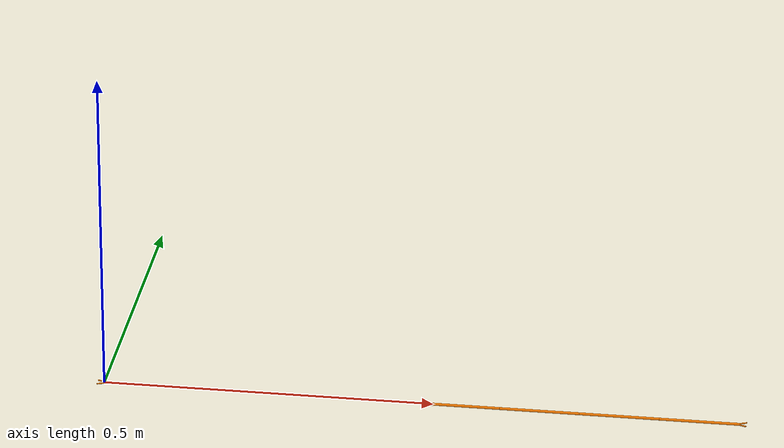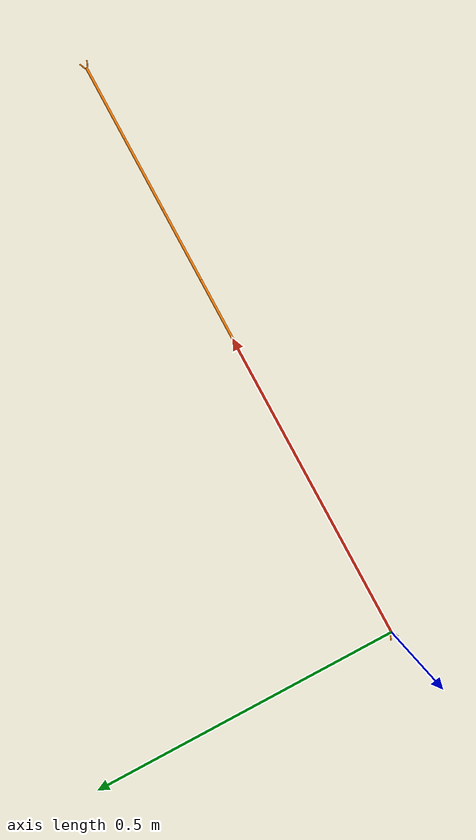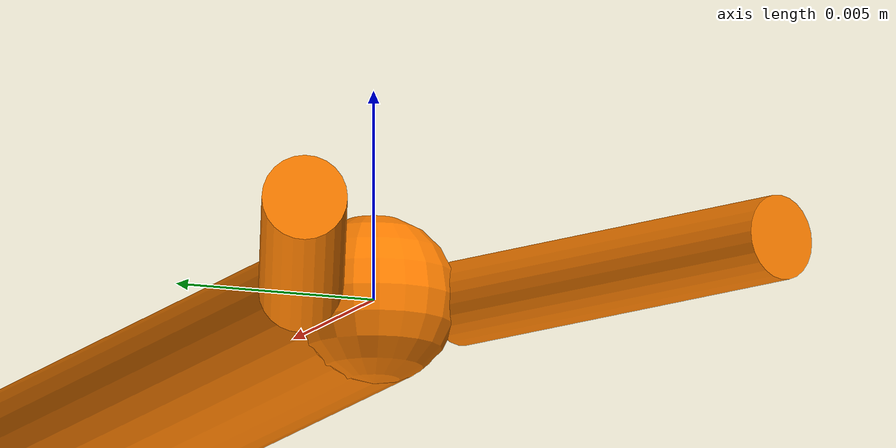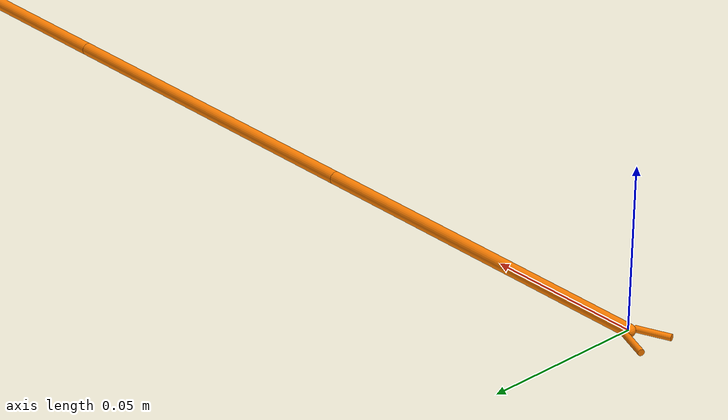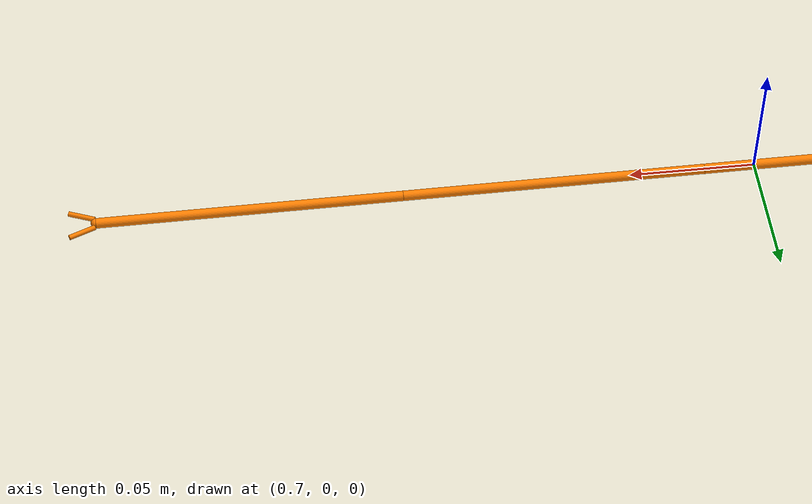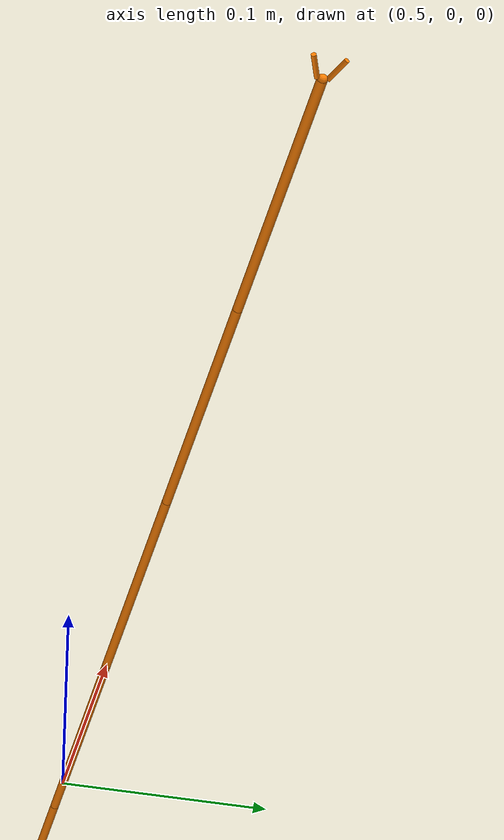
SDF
<?xml version="1.0" ?>
<!--
  THIS FILE IS AUTO-GENERATED FROM AN ERB TEMPLATE

  see instructions in 'path_to_ws/src/aic/aic_assets/scripts/cable.sdf.erb'
-->
<sdf version="1.9">
  <model name="cable">
    <link name="cable_end_0">
      <pose>0.000000 0.000000 0.000000 0.000000 -0.000000 0.000000</pose>
      <inertial>
        <pose>0.000000 0.000000 0.000000 0.000000 -0.000000 0.000000</pose>
        <mass>0.0375</mass>
        <inertia>
          <ixx>0.010000</ixx>
          <ixy>0.000000</ixy>
          <ixz>0.000000</ixz>
          <iyy>0.010000</iyy>
          <iyz>0.000000</iyz>
          <izz>0.010000</izz>
        </inertia>
      </inertial>
      <collision name="base_collision">
        <pose>0.000000 0.000000 0.000000 0.000000 0.000000 0.000000</pose>
        <geometry>
          <sphere>
            <radius>0.002</radius>
          </sphere>
        </geometry>
      </collision>
      <visual name="base_vis">
        <pose>0.000000 0.000000 0.000000 0.000000 0.000000 0.000000</pose>
        <geometry>
          <sphere>
            <radius>0.002</radius>
          </sphere>
        </geometry>
        <material>
          <diffuse>1.0 0.5 0.0</diffuse>
          <specular>0.2 0.2 0.2</specular>
          <pbr>
            <metal>
              <roughness>0.05</roughness>
              <metalness>0.01</metalness>
            </metal>
          </pbr>
        </material>
      </visual>
    </link>
    <joint name="joint_end_0" type="ball">
      <pose>0.00000 0.000000 -0.06 0.000000 0 0.000000</pose>
      <child>link_1</child>
      <parent>cable_end_0</parent>
      <axis>
        <dynamics>
          <damping>1.0</damping>
          <spring_stiffness>1.0</spring_stiffness>
        </dynamics>
      </axis>
    </joint>
    <link name="link_1">
      <pose>0.06 0.000000 0.000000 0.000000 1.570790 0.000000</pose>
      <inertial>
        <pose>0.000000 0.000000 0.000000 0.000000 -0.000000 0.000000</pose>
        <mass>0.0375</mass>
        <inertia>
          <ixx>0.010000</ixx>
          <ixy>0.000000</ixy>
          <ixz>0.000000</ixz>
          <iyy>0.010000</iyy>
          <iyz>0.000000</iyz>
          <izz>0.010000</izz>
        </inertia>
      </inertial>
      <collision name="link_1_collision">
        <pose>0.00000 0.000000 0.000000 0.000000 0 0.000000</pose>
        <geometry>
          <cylinder>
            <length>0.12</length>
            <radius>0.002</radius>
          </cylinder>
        </geometry>
      </collision>
      <visual name="link_1_vis">
        <pose>0.00000 0.000000 0.000000 0.000000 0 0.000000</pose>
        <geometry>
          <cylinder>
            <length>0.12</length>
            <radius>0.002</radius>
          </cylinder>
        </geometry>
        <material>
          <diffuse>1.0 0.5 0.0</diffuse>
          <specular>0.2 0.2 0.2</specular>
          <pbr>
            <metal>
              <roughness>0.05</roughness>
              <metalness>0.01</metalness>
            </metal>
          </pbr>
        </material>
      </visual>
      <collision name="sphere_1_collision">
        <pose>0.000000 0.000000 0.06 0.000000 -0.000000 0.000000</pose>
        <geometry>
          <sphere>
            <radius>0.002</radius>
          </sphere>
        </geometry>
      </collision>
      <visual name="sphere_1_vis">
        <pose>0.000000 0.000000 0.06 0.000000 -0.000000 0.000000</pose>
        <geometry>
          <sphere>
            <radius>0.002</radius>
          </sphere>
        </geometry>
        <material>
          <diffuse>1.0 0.5 0.0</diffuse>
          <specular>0.2 0.2 0.2</specular>
          <pbr>
            <metal>
              <roughness>0.05</roughness>
              <metalness>0.01</metalness>
            </metal>
          </pbr>
        </material>
      </visual>
    </link>
    <link name="link_2">
      <pose>0.18 0.000000 0.000000 0.000000 1.570790 0.000000</pose>
      <inertial>
        <pose>0.000000 0.000000 0.000000 0.000000 -0.000000 0.000000</pose>
        <mass>0.0375</mass>
        <inertia>
          <ixx>0.010000</ixx>
          <ixy>0.000000</ixy>
          <ixz>0.000000</ixz>
          <iyy>0.010000</iyy>
          <iyz>0.000000</iyz>
          <izz>0.010000</izz>
        </inertia>
      </inertial>
      <collision name="link_2_collision">
        <pose>0.00000 0.000000 0.000000 0.000000 0 0.000000</pose>
        <geometry>
          <cylinder>
            <length>0.12</length>
            <radius>0.002</radius>
          </cylinder>
        </geometry>
      </collision>
      <visual name="link_2_vis">
        <pose>0.00000 0.000000 0.000000 0.000000 0 0.000000</pose>
        <geometry>
          <cylinder>
            <length>0.12</length>
            <radius>0.002</radius>
          </cylinder>
        </geometry>
        <material>
          <diffuse>1.0 0.5 0.0</diffuse>
          <specular>0.2 0.2 0.2</specular>
          <pbr>
            <metal>
              <roughness>0.05</roughness>
              <metalness>0.01</metalness>
            </metal>
          </pbr>
        </material>
      </visual>
      <collision name="sphere_2_collision">
        <pose>0.000000 0.000000 0.06 0.000000 -0.000000 0.000000</pose>
        <geometry>
          <sphere>
            <radius>0.002</radius>
          </sphere>
        </geometry>
      </collision>
      <visual name="sphere_2_vis">
        <pose>0.000000 0.000000 0.06 0.000000 -0.000000 0.000000</pose>
        <geometry>
          <sphere>
            <radius>0.002</radius>
          </sphere>
        </geometry>
        <material>
          <diffuse>1.0 0.5 0.0</diffuse>
          <specular>0.2 0.2 0.2</specular>
          <pbr>
            <metal>
              <roughness>0.05</roughness>
              <metalness>0.01</metalness>
            </metal>
          </pbr>
        </material>
      </visual>
    </link>
    <link name="link_3">
      <pose>0.3 0.000000 0.000000 0.000000 1.570790 0.000000</pose>
      <inertial>
        <pose>0.000000 0.000000 0.000000 0.000000 -0.000000 0.000000</pose>
        <mass>0.0375</mass>
        <inertia>
          <ixx>0.010000</ixx>
          <ixy>0.000000</ixy>
          <ixz>0.000000</ixz>
          <iyy>0.010000</iyy>
          <iyz>0.000000</iyz>
          <izz>0.010000</izz>
        </inertia>
      </inertial>
      <collision name="link_3_collision">
        <pose>0.00000 0.000000 0.000000 0.000000 0 0.000000</pose>
        <geometry>
          <cylinder>
            <length>0.12</length>
            <radius>0.002</radius>
          </cylinder>
        </geometry>
      </collision>
      <visual name="link_3_vis">
        <pose>0.00000 0.000000 0.000000 0.000000 0 0.000000</pose>
        <geometry>
          <cylinder>
            <length>0.12</length>
            <radius>0.002</radius>
          </cylinder>
        </geometry>
        <material>
          <diffuse>1.0 0.5 0.0</diffuse>
          <specular>0.2 0.2 0.2</specular>
          <pbr>
            <metal>
              <roughness>0.05</roughness>
              <metalness>0.01</metalness>
            </metal>
          </pbr>
        </material>
      </visual>
      <collision name="sphere_3_collision">
        <pose>0.000000 0.000000 0.06 0.000000 -0.000000 0.000000</pose>
        <geometry>
          <sphere>
            <radius>0.002</radius>
          </sphere>
        </geometry>
      </collision>
      <visual name="sphere_3_vis">
        <pose>0.000000 0.000000 0.06 0.000000 -0.000000 0.000000</pose>
        <geometry>
          <sphere>
            <radius>0.002</radius>
          </sphere>
        </geometry>
        <material>
          <diffuse>1.0 0.5 0.0</diffuse>
          <specular>0.2 0.2 0.2</specular>
          <pbr>
            <metal>
              <roughness>0.05</roughness>
              <metalness>0.01</metalness>
            </metal>
          </pbr>
        </material>
      </visual>
    </link>
    <link name="link_4">
      <pose>0.42 0.000000 0.000000 0.000000 1.570790 0.000000</pose>
      <inertial>
        <pose>0.000000 0.000000 0.000000 0.000000 -0.000000 0.000000</pose>
        <mass>0.0375</mass>
        <inertia>
          <ixx>0.010000</ixx>
          <ixy>0.000000</ixy>
          <ixz>0.000000</ixz>
          <iyy>0.010000</iyy>
          <iyz>0.000000</iyz>
          <izz>0.010000</izz>
        </inertia>
      </inertial>
      <collision name="link_4_collision">
        <pose>0.00000 0.000000 0.000000 0.000000 0 0.000000</pose>
        <geometry>
          <cylinder>
            <length>0.12</length>
            <radius>0.002</radius>
          </cylinder>
        </geometry>
      </collision>
      <visual name="link_4_vis">
        <pose>0.00000 0.000000 0.000000 0.000000 0 0.000000</pose>
        <geometry>
          <cylinder>
            <length>0.12</length>
            <radius>0.002</radius>
          </cylinder>
        </geometry>
        <material>
          <diffuse>1.0 0.5 0.0</diffuse>
          <specular>0.2 0.2 0.2</specular>
          <pbr>
            <metal>
              <roughness>0.05</roughness>
              <metalness>0.01</metalness>
            </metal>
          </pbr>
        </material>
      </visual>
      <collision name="sphere_4_collision">
        <pose>0.000000 0.000000 0.06 0.000000 -0.000000 0.000000</pose>
        <geometry>
          <sphere>
            <radius>0.002</radius>
          </sphere>
        </geometry>
      </collision>
      <visual name="sphere_4_vis">
        <pose>0.000000 0.000000 0.06 0.000000 -0.000000 0.000000</pose>
        <geometry>
          <sphere>
            <radius>0.002</radius>
          </sphere>
        </geometry>
        <material>
          <diffuse>1.0 0.5 0.0</diffuse>
          <specular>0.2 0.2 0.2</specular>
          <pbr>
            <metal>
              <roughness>0.05</roughness>
              <metalness>0.01</metalness>
            </metal>
          </pbr>
        </material>
      </visual>
    </link>
    <link name="link_5">
      <pose>0.54 0.000000 0.000000 0.000000 1.570790 0.000000</pose>
      <inertial>
        <pose>0.000000 0.000000 0.000000 0.000000 -0.000000 0.000000</pose>
        <mass>0.0375</mass>
        <inertia>
          <ixx>0.010000</ixx>
          <ixy>0.000000</ixy>
          <ixz>0.000000</ixz>
          <iyy>0.010000</iyy>
          <iyz>0.000000</iyz>
          <izz>0.010000</izz>
        </inertia>
      </inertial>
      <collision name="link_5_collision">
        <pose>0.00000 0.000000 0.000000 0.000000 0 0.000000</pose>
        <geometry>
          <cylinder>
            <length>0.12</length>
            <radius>0.002</radius>
          </cylinder>
        </geometry>
      </collision>
      <visual name="link_5_vis">
        <pose>0.00000 0.000000 0.000000 0.000000 0 0.000000</pose>
        <geometry>
          <cylinder>
            <length>0.12</length>
            <radius>0.002</radius>
          </cylinder>
        </geometry>
        <material>
          <diffuse>1.0 0.5 0.0</diffuse>
          <specular>0.2 0.2 0.2</specular>
          <pbr>
            <metal>
              <roughness>0.05</roughness>
              <metalness>0.01</metalness>
            </metal>
          </pbr>
        </material>
      </visual>
      <collision name="sphere_5_collision">
        <pose>0.000000 0.000000 0.06 0.000000 -0.000000 0.000000</pose>
        <geometry>
          <sphere>
            <radius>0.002</radius>
          </sphere>
        </geometry>
      </collision>
      <visual name="sphere_5_vis">
        <pose>0.000000 0.000000 0.06 0.000000 -0.000000 0.000000</pose>
        <geometry>
          <sphere>
            <radius>0.002</radius>
          </sphere>
        </geometry>
        <material>
          <diffuse>1.0 0.5 0.0</diffuse>
          <specular>0.2 0.2 0.2</specular>
          <pbr>
            <metal>
              <roughness>0.05</roughness>
              <metalness>0.01</metalness>
            </metal>
          </pbr>
        </material>
      </visual>
    </link>
    <link name="link_6">
      <pose>0.6599999999999999 0.000000 0.000000 0.000000 1.570790 0.000000</pose>
      <inertial>
        <pose>0.000000 0.000000 0.000000 0.000000 -0.000000 0.000000</pose>
        <mass>0.0375</mass>
        <inertia>
          <ixx>0.010000</ixx>
          <ixy>0.000000</ixy>
          <ixz>0.000000</ixz>
          <iyy>0.010000</iyy>
          <iyz>0.000000</iyz>
          <izz>0.010000</izz>
        </inertia>
      </inertial>
      <collision name="link_6_collision">
        <pose>0.00000 0.000000 0.000000 0.000000 0 0.000000</pose>
        <geometry>
          <cylinder>
            <length>0.12</length>
            <radius>0.002</radius>
          </cylinder>
        </geometry>
      </collision>
      <visual name="link_6_vis">
        <pose>0.00000 0.000000 0.000000 0.000000 0 0.000000</pose>
        <geometry>
          <cylinder>
            <length>0.12</length>
            <radius>0.002</radius>
          </cylinder>
        </geometry>
        <material>
          <diffuse>1.0 0.5 0.0</diffuse>
          <specular>0.2 0.2 0.2</specular>
          <pbr>
            <metal>
              <roughness>0.05</roughness>
              <metalness>0.01</metalness>
            </metal>
          </pbr>
        </material>
      </visual>
      <collision name="sphere_6_collision">
        <pose>0.000000 0.000000 0.06 0.000000 -0.000000 0.000000</pose>
        <geometry>
          <sphere>
            <radius>0.002</radius>
          </sphere>
        </geometry>
      </collision>
      <visual name="sphere_6_vis">
        <pose>0.000000 0.000000 0.06 0.000000 -0.000000 0.000000</pose>
        <geometry>
          <sphere>
            <radius>0.002</radius>
          </sphere>
        </geometry>
        <material>
          <diffuse>1.0 0.5 0.0</diffuse>
          <specular>0.2 0.2 0.2</specular>
          <pbr>
            <metal>
              <roughness>0.05</roughness>
              <metalness>0.01</metalness>
            </metal>
          </pbr>
        </material>
      </visual>
    </link>
    <link name="link_7">
      <pose>0.78 0.000000 0.000000 0.000000 1.570790 0.000000</pose>
      <inertial>
        <pose>0.000000 0.000000 0.000000 0.000000 -0.000000 0.000000</pose>
        <mass>0.0375</mass>
        <inertia>
          <ixx>0.010000</ixx>
          <ixy>0.000000</ixy>
          <ixz>0.000000</ixz>
          <iyy>0.010000</iyy>
          <iyz>0.000000</iyz>
          <izz>0.010000</izz>
        </inertia>
      </inertial>
      <collision name="link_7_collision">
        <pose>0.00000 0.000000 0.000000 0.000000 0 0.000000</pose>
        <geometry>
          <cylinder>
            <length>0.12</length>
            <radius>0.002</radius>
          </cylinder>
        </geometry>
      </collision>
      <visual name="link_7_vis">
        <pose>0.00000 0.000000 0.000000 0.000000 0 0.000000</pose>
        <geometry>
          <cylinder>
            <length>0.12</length>
            <radius>0.002</radius>
          </cylinder>
        </geometry>
        <material>
          <diffuse>1.0 0.5 0.0</diffuse>
          <specular>0.2 0.2 0.2</specular>
          <pbr>
            <metal>
              <roughness>0.05</roughness>
              <metalness>0.01</metalness>
            </metal>
          </pbr>
        </material>
      </visual>
      <collision name="sphere_7_collision">
        <pose>0.000000 0.000000 0.06 0.000000 -0.000000 0.000000</pose>
        <geometry>
          <sphere>
            <radius>0.002</radius>
          </sphere>
        </geometry>
      </collision>
      <visual name="sphere_7_vis">
        <pose>0.000000 0.000000 0.06 0.000000 -0.000000 0.000000</pose>
        <geometry>
          <sphere>
            <radius>0.002</radius>
          </sphere>
        </geometry>
        <material>
          <diffuse>1.0 0.5 0.0</diffuse>
          <specular>0.2 0.2 0.2</specular>
          <pbr>
            <metal>
              <roughness>0.05</roughness>
              <metalness>0.01</metalness>
            </metal>
          </pbr>
        </material>
      </visual>
    </link>
    <link name="link_8">
      <pose>0.8999999999999999 0.000000 0.000000 0.000000 1.570790 0.000000</pose>
      <inertial>
        <pose>0.000000 0.000000 0.000000 0.000000 -0.000000 0.000000</pose>
        <mass>0.0375</mass>
        <inertia>
          <ixx>0.010000</ixx>
          <ixy>0.000000</ixy>
          <ixz>0.000000</ixz>
          <iyy>0.010000</iyy>
          <iyz>0.000000</iyz>
          <izz>0.010000</izz>
        </inertia>
      </inertial>
      <collision name="link_8_collision">
        <pose>0.00000 0.000000 0.000000 0.000000 0 0.000000</pose>
        <geometry>
          <cylinder>
            <length>0.12</length>
            <radius>0.002</radius>
          </cylinder>
        </geometry>
      </collision>
      <visual name="link_8_vis">
        <pose>0.00000 0.000000 0.000000 0.000000 0 0.000000</pose>
        <geometry>
          <cylinder>
            <length>0.12</length>
            <radius>0.002</radius>
          </cylinder>
        </geometry>
        <material>
          <diffuse>1.0 0.5 0.0</diffuse>
          <specular>0.2 0.2 0.2</specular>
          <pbr>
            <metal>
              <roughness>0.05</roughness>
              <metalness>0.01</metalness>
            </metal>
          </pbr>
        </material>
      </visual>
      <collision name="sphere_8_collision">
        <pose>0.000000 0.000000 0.06 0.000000 -0.000000 0.000000</pose>
        <geometry>
          <sphere>
            <radius>0.002</radius>
          </sphere>
        </geometry>
      </collision>
      <visual name="sphere_8_vis">
        <pose>0.000000 0.000000 0.06 0.000000 -0.000000 0.000000</pose>
        <geometry>
          <sphere>
            <radius>0.002</radius>
          </sphere>
        </geometry>
        <material>
          <diffuse>1.0 0.5 0.0</diffuse>
          <specular>0.2 0.2 0.2</specular>
          <pbr>
            <metal>
              <roughness>0.05</roughness>
              <metalness>0.01</metalness>
            </metal>
          </pbr>
        </material>
      </visual>
    </link>
    <joint name="joint_1" type="ball">
      <pose>0.00000 0.000000 -0.06 0.000000 0 0.000000</pose>
      <parent>link_1</parent>
      <child>link_2</child>
      <axis>
        <dynamics>
          <damping>1.0</damping>
          <spring_stiffness>1.0</spring_stiffness>
        </dynamics>
      </axis>
    </joint>
    <joint name="joint_2" type="ball">
      <pose>0.00000 0.000000 -0.06 0.000000 0 0.000000</pose>
      <parent>link_2</parent>
      <child>link_3</child>
      <axis>
        <dynamics>
          <damping>1.0</damping>
          <spring_stiffness>1.0</spring_stiffness>
        </dynamics>
      </axis>
    </joint>
    <joint name="joint_3" type="ball">
      <pose>0.00000 0.000000 -0.06 0.000000 0 0.000000</pose>
      <parent>link_3</parent>
      <child>link_4</child>
      <axis>
        <dynamics>
          <damping>1.0</damping>
          <spring_stiffness>1.0</spring_stiffness>
        </dynamics>
      </axis>
    </joint>
    <joint name="joint_4" type="ball">
      <pose>0.00000 0.000000 -0.06 0.000000 0 0.000000</pose>
      <parent>link_4</parent>
      <child>link_5</child>
      <axis>
        <dynamics>
          <damping>1.0</damping>
          <spring_stiffness>1.0</spring_stiffness>
        </dynamics>
      </axis>
    </joint>
    <joint name="joint_5" type="ball">
      <pose>0.00000 0.000000 -0.06 0.000000 0 0.000000</pose>
      <parent>link_5</parent>
      <child>link_6</child>
      <axis>
        <dynamics>
          <damping>1.0</damping>
          <spring_stiffness>1.0</spring_stiffness>
        </dynamics>
      </axis>
    </joint>
    <joint name="joint_6" type="ball">
      <pose>0.00000 0.000000 -0.06 0.000000 0 0.000000</pose>
      <parent>link_6</parent>
      <child>link_7</child>
      <axis>
        <dynamics>
          <damping>1.0</damping>
          <spring_stiffness>1.0</spring_stiffness>
        </dynamics>
      </axis>
    </joint>
    <joint name="joint_7" type="ball">
      <pose>0.00000 0.000000 -0.06 0.000000 0 0.000000</pose>
      <parent>link_7</parent>
      <child>link_8</child>
      <axis>
        <dynamics>
          <damping>1.0</damping>
          <spring_stiffness>1.0</spring_stiffness>
        </dynamics>
      </axis>
    </joint>
    <frame name="cable_mount_base">
      <pose>0 0 0 0 0 0</pose>
    </frame>
    <frame name="cable_mount_end">
      <pose>0.96 0 0 0 0 0</pose>
    </frame>
    <link name="cable_connection_0">
      <inertial>
        <pose>0.000000 0.000000 0.000000 0.000000 -0.000000 0.000000</pose>
        <mass>0.01</mass>
        <inertia>
          <ixx>0.010000</ixx>
          <ixy>0.000000</ixy>
          <ixz>0.000000</ixz>
          <iyy>0.010000</iyy>
          <iyz>0.000000</iyz>
          <izz>0.010000</izz>
        </inertia>
      </inertial>
      <pose relative_to="cable_mount_base">0 0 0 0 0 0</pose>
      <collision name="collision_0">
        <pose>-0.005385164807134504 0.004 0 0.3805063771123649 1.57079 0</pose>
        <geometry>
          <cylinder>
            <radius>0.001</radius>
            <length>0.010770329614269008</length>
          </cylinder>
        </geometry>
      </collision>
      <visual name="visual_0">
        <pose>-0.005385164807134504 0.004 0 0.3805063771123649 1.57079 0</pose>
        <geometry>
          <cylinder>
            <radius>0.001</radius>
            <length>0.010770329614269008</length>
          </cylinder>
        </geometry>
        <material>
          <diffuse>1.0 0.5 0.0</diffuse>
          <specular>0.2 0.2 0.2</specular>
          <pbr>
            <metal>
              <roughness>0.05</roughness>
              <metalness>0.01</metalness>
            </metal>
          </pbr>
        </material>
      </visual>
      <collision name="collision_1">
        <pose>-0.005385164807134504 -0.004 0 -0.3805063771123649 1.57079 0</pose>
        <geometry>
          <cylinder>
            <radius>0.001</radius>
            <length>0.010770329614269008</length>
          </cylinder>
        </geometry>
      </collision>
      <visual name="visual_1">
        <pose>-0.005385164807134504 -0.004 0 -0.3805063771123649 1.57079 0</pose>
        <geometry>
          <cylinder>
            <radius>0.001</radius>
            <length>0.010770329614269008</length>
          </cylinder>
        </geometry>
        <material>
          <diffuse>1.0 0.5 0.0</diffuse>
          <specular>0.2 0.2 0.2</specular>
          <pbr>
            <metal>
              <roughness>0.05</roughness>
              <metalness>0.01</metalness>
            </metal>
          </pbr>
        </material>
      </visual>
    </link>
    <link name="cable_connection_1">
      <inertial>
        <pose>0.000000 0.000000 0.000000 0.000000 -0.000000 0.000000</pose>
        <mass>0.01</mass>
        <inertia>
          <ixx>0.010000</ixx>
          <ixy>0.000000</ixy>
          <ixz>0.000000</ixz>
          <iyy>0.010000</iyy>
          <iyz>0.000000</iyz>
          <izz>0.010000</izz>
        </inertia>
      </inertial>
      <pose relative_to="cable_mount_end">0 0 0 0 0 0</pose>
      <collision name="collision_0">
        <pose>0.005385164807134504 -0.004 0 0.3805063771123649 1.57079 0</pose>
        <geometry>
          <cylinder>
            <radius>0.001</radius>
            <length>0.010770329614269008</length>
          </cylinder>
        </geometry>
      </collision>
      <visual name="visual_0">
        <pose>0.005385164807134504 -0.004 0 0.3805063771123649 1.57079 0</pose>
        <geometry>
          <cylinder>
            <radius>0.001</radius>
            <length>0.010770329614269008</length>
          </cylinder>
        </geometry>
        <material>
          <diffuse>1.0 0.5 0.0</diffuse>
          <specular>0.2 0.2 0.2</specular>
          <pbr>
            <metal>
              <roughness>0.05</roughness>
              <metalness>0.01</metalness>
            </metal>
          </pbr>
        </material>
      </visual>
      <collision name="collision_1">
        <pose>0.005385164807134504 0.004 0 -0.3805063771123649 1.57079 0</pose>
        <geometry>
          <cylinder>
            <radius>0.001</radius>
            <length>0.010770329614269008</length>
          </cylinder>
        </geometry>
      </collision>
      <visual name="visual_1">
        <pose>0.005385164807134504 0.004 0 -0.3805063771123649 1.57079 0</pose>
        <geometry>
          <cylinder>
            <radius>0.001</radius>
            <length>0.010770329614269008</length>
          </cylinder>
        </geometry>
        <material>
          <diffuse>1.0 0.5 0.0</diffuse>
          <specular>0.2 0.2 0.2</specular>
          <pbr>
            <metal>
              <roughness>0.05</roughness>
              <metalness>0.01</metalness>
            </metal>
          </pbr>
        </material>
      </visual>
    </link>
    <joint name="joint_connection_end_0" type="ball">
      <pose>0.00000 0.000000 0 0.000000 0 0.000000</pose>
      <parent>cable_end_0</parent>
      <child>cable_connection_0</child>
      <axis>
        <dynamics>
          <damping>1.0</damping>
          <spring_stiffness>1.0</spring_stiffness>
        </dynamics>
      </axis>
    </joint>
    <joint name="joint_connection_end_1" type="ball">
      <pose>0.00000 0.000000 0 0.000000 0 0.000000</pose>
      <parent>link_8</parent>
      <child>cable_connection_1</child>
      <axis>
        <dynamics>
          <damping>1.0</damping>
          <spring_stiffness>1.0</spring_stiffness>
        </dynamics>
      </axis>
    </joint>
  </model>
</sdf>
